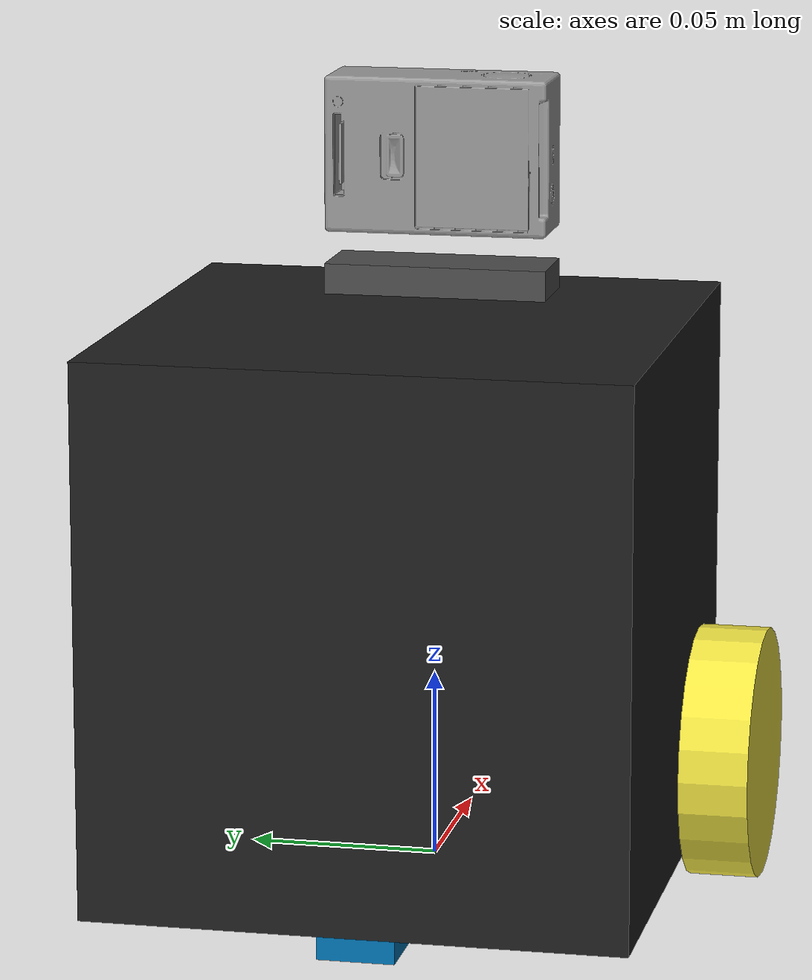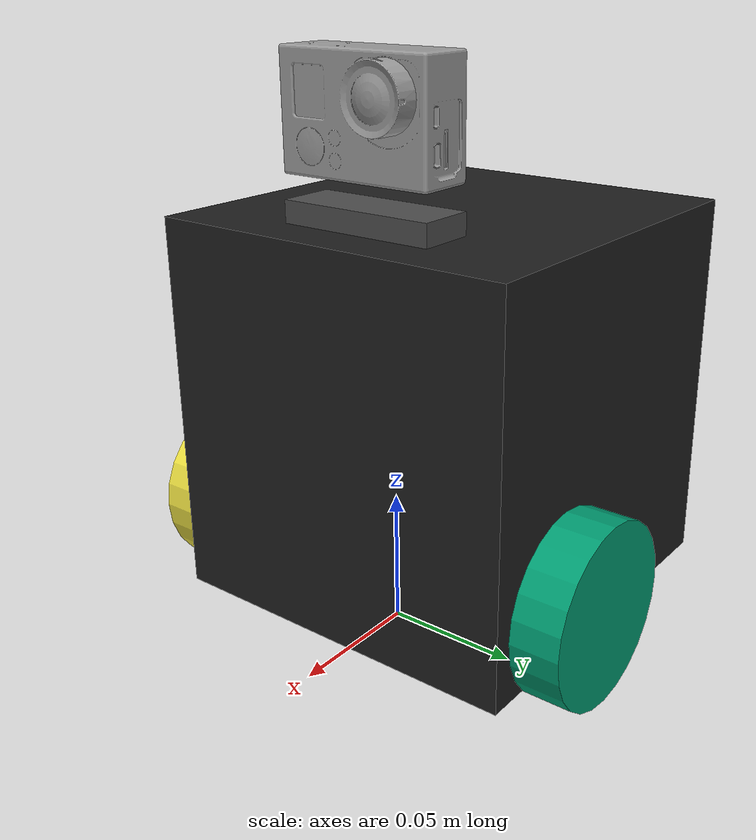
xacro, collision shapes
<?xml version="1.0" ?>
<robot name="turtlebot3_burger" xmlns:xacro="http://ros.org/wiki/xacro">
  <xacro:include filename="$(find turtlebot3_description)/urdf/common_properties.xacro"/>
  <xacro:include filename="$(find turtlebot3_description)/urdf/turtlebot3_burger.gazebo.xacro"/>

  <link name="base_footprint"/>

  <joint name="base_joint" type="fixed">
    <parent link="base_footprint"/>
    <child link="base_link"/>
    <origin xyz="0.0 0.0 0.010" rpy="0 0 0"/>
  </joint>

  <link name="base_link">
    <visual>
      <origin xyz="-0.032 0 0.0" rpy="0 0 0"/>
      <geometry>
        <mesh filename="package://turtlebot3_description/meshes/bases/burger_base.stl" scale="0.001 0.001 0.001"/>
      </geometry>
      <material name="light_black"/>
    </visual>

    <collision>
      <origin xyz="-0.032 0 0.070" rpy="0 0 0"/>
      <geometry>
        <box size="0.140 0.140 0.143"/>
      </geometry>
    </collision>

    <inertial>
      <origin xyz="0 0 0" rpy="0 0 0"/>
      <mass value="8.2573504e-01"/>
      <inertia ixx="2.2124416e-03" ixy="-1.2294101e-05" ixz="3.4938785e-05"
               iyy="2.1193702e-03" iyz="-5.0120904e-06"
               izz="2.0064271e-03" />
    </inertial>
  </link>

  <joint name="wheel_left_joint" type="continuous">
    <parent link="base_link"/>
    <child link="wheel_left_link"/>
    <origin xyz="0.0 0.08 0.023" rpy="-1.57 0 0"/>
    <axis xyz="0 0 1"/>
  </joint>

  <link name="wheel_left_link">
    <visual>
      <origin xyz="0 0 0" rpy="1.57 0 0"/>
      <geometry>
        <mesh filename="package://turtlebot3_description/meshes/wheels/left_tire.stl" scale="0.001 0.001 0.001"/>
      </geometry>
      <material name="dark"/>
    </visual>

    <collision>
      <origin xyz="0 0 0" rpy="0 0 0"/>
      <geometry>
        <cylinder length="0.018" radius="0.033"/>
      </geometry>
    </collision>

    <inertial>
      <origin xyz="0 0 0" />
      <mass value="2.8498940e-02" />
      <inertia ixx="1.1175580e-05" ixy="-4.2369783e-11" ixz="-5.9381719e-09"
               iyy="1.1192413e-05" iyz="-1.4400107e-11"
               izz="2.0712558e-05" />
      </inertial>
  </link>

  <joint name="wheel_right_joint" type="continuous">
    <parent link="base_link"/>
    <child link="wheel_right_link"/>
    <origin xyz="0.0 -0.080 0.023" rpy="-1.57 0 0"/>
    <axis xyz="0 0 1"/>
  </joint>

  <link name="wheel_right_link">
    <visual>
      <origin xyz="0 0 0" rpy="1.57 0 0"/>
      <geometry>
        <mesh filename="package://turtlebot3_description/meshes/wheels/right_tire.stl" scale="0.001 0.001 0.001"/>
      </geometry>
      <material name="dark"/>
    </visual>

    <collision>
      <origin xyz="0 0 0" rpy="0 0 0"/>
      <geometry>
        <cylinder length="0.018" radius="0.033"/>
      </geometry>
    </collision>

    <inertial>
      <origin xyz="0 0 0" />
      <mass value="2.8498940e-02" />
      <inertia ixx="1.1175580e-05" ixy="-4.2369783e-11" ixz="-5.9381719e-09"
               iyy="1.1192413e-05" iyz="-1.4400107e-11"
               izz="2.0712558e-05" />
      </inertial>
  </link>

  <joint name="caster_back_joint" type="fixed">
    <parent link="base_link"/>
    <child link="caster_back_link"/>
    <origin xyz="-0.081 0 -0.004" rpy="-1.57 0 0"/>
  </joint>

  <link name="caster_back_link">
    <collision>
      <origin xyz="0 0.001 0" rpy="0 0 0"/>
      <geometry>
        <box size="0.030 0.009 0.020"/>
      </geometry>
    </collision>

    <inertial>
      <origin xyz="0 0 0" />
      <mass value="0.005" />
      <inertia ixx="0.001" ixy="0.0" ixz="0.0"
               iyy="0.001" iyz="0.0"
               izz="0.001" />
    </inertial>
  </link>

  <joint name="imu_joint" type="fixed">
    <parent link="base_link"/>
    <child link="imu_link"/>
    <origin xyz="-0.032 0 0.068" rpy="0 0 0"/>
  </joint>

  <link name="imu_link"/>

  <joint name="step_joint" type="fixed">
    <parent link="base_link"/>
    <child link="base_step"/>
    <origin xyz="0.01 0 0.141" rpy="0 0 0"/>
  </joint>

  <link name="base_step">
    <visual>
      <origin xyz="0 0 0.0085" rpy="0 0 0"/>
      <geometry>
        <box size="0.021 0.059 0.017"/>
      </geometry>
    </visual>

    <collision>
      <origin xyz="0 0 0" rpy="0 0 0"/>
      <geometry>
        <box size="0.021 0.059 0.017"/>
      </geometry>
    </collision>

    <inertial>
      <mass value="0.0001" />
      <origin xyz="0 0 0" />
      <inertia ixx="0.001" ixy="0.0" ixz="0.0"
               iyy="0.001" iyz="0.0"
               izz="0.001" />
    </inertial>
  </link>

  <gazebo reference="base_step">
    <material>Gazebo/DarkGrey</material>
  </gazebo>

  <joint name="scan_joint" type="fixed">
    <parent link="base_step"/>
    <child link="base_scan"/>
    <origin xyz="0 0 0.017" rpy="0 0 0"/>
  </joint>

  <link name="base_scan">
    <visual>
      <origin xyz="0 0 0" rpy="0 0 0"/>
      <geometry>
        <mesh filename="package://fyp_ros_pkg/meshes/camera.STL"/>
      </geometry>
    </visual>

    <collision>
      <origin xyz="0 0 0" rpy="0 0 0"/>
      <geometry>
        <mesh filename="package://fyp_ros_pkg/meshes/camera.STL"/>
      </geometry>
    </collision>

    <inertial>
      <mass value="0.0001" />
      <origin xyz="0 0 0" />
      <inertia ixx="0.001" ixy="0.0" ixz="0.0"
               iyy="0.001" iyz="0.0"
               izz="0.001" />
    </inertial>
  </link>

  <gazebo reference="base_scan">
    <material>Gazebo/Grey</material>
    <sensor type="camera" name="camera">
      <update_rate>30.0</update_rate>
      <camera name="head">
        <horizontal_fov>1.3962634</horizontal_fov>
        <image>
          <width>1024</width>
          <height>768</height>
          <format>R8G8B8</format>
        </image>
        <clip>
          <near>0.02</near>
          <far>300</far>
        </clip>
        <noise>
          <type>gaussian</type>
          <mean>0.0</mean>
          <stddev>0.007</stddev>
        </noise>
      </camera>
      <plugin name="camera_controller" filename="libgazebo_ros_camera.so">
        <alwaysOn>true</alwaysOn>
        <updateRate>0.0</updateRate>
        <cameraName>camera</cameraName>
        <imageTopicName>image_raw</imageTopicName>
        <cameraInfoTopicName>camera_info</cameraInfoTopicName>
        <frameName>base_scan</frameName>
        <hackBaseline>0.07</hackBaseline>
        <distortionK1>0.0</distortionK1>
        <distortionK2>0.0</distortionK2>
        <distortionK3>0.0</distortionK3>
        <distortionT1>0.0</distortionT1>
        <distortionT2>0.0</distortionT2>
      </plugin>
    </sensor>
  </gazebo>

</robot>
